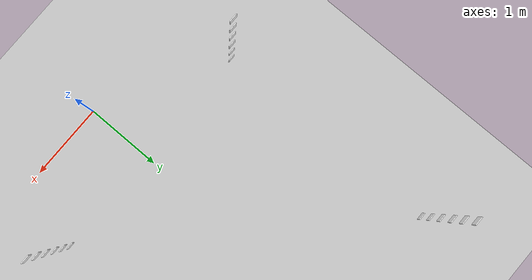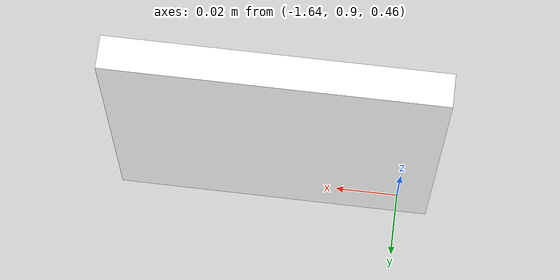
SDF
<sdf version="1.6">
 <world name="default">
  <include><uri>model://ground_plane</uri></include>
  <include><uri>model://sun</uri></include>
  <model name="stag_r1c1_l1_m1">
   <static>true</static>
   <pose>-1.6 0.9 0.146 1.5708 0 0</pose>
   <link name="marker_link">
    <collision name="collision"><geometry><box><size>0.1 0.1 0.01</size></box></geometry></collision>
    <visual name="visual">
     <geometry><box><size>0.1 0.1 0.01</size></box></geometry>
     <material>
      <script>
       <uri>model://STag_marker/materials/scripts</uri>
       <uri>model://STag_marker/materials/textures</uri>
       <name>STagMarker/marker_00219</name>
      </script>
      <ambient>1 1 1 1</ambient>
      <diffuse>1 1 1 1</diffuse>
     </material>
     <pose>0 0 0.001 0 0 0</pose>
    </visual>
   </link>
  </model>
  <model name="stag_r1c1_l2_m1">
   <static>true</static>
   <pose>-1.6 0.9 0.506 1.5708 0 0</pose>
   <link name="marker_link">
    <collision name="collision"><geometry><box><size>0.1 0.1 0.01</size></box></geometry></collision>
    <visual name="visual">
     <geometry><box><size>0.1 0.1 0.01</size></box></geometry>
     <material>
      <script>
       <uri>model://STag_marker/materials/scripts</uri>
       <uri>model://STag_marker/materials/textures</uri>
       <name>STagMarker/marker_00261</name>
      </script>
      <ambient>1 1 1 1</ambient>
      <diffuse>1 1 1 1</diffuse>
     </material>
     <pose>0 0 0.001 0 0 0</pose>
    </visual>
   </link>
  </model>
  <model name="stag_r1c1_l3_m1">
   <static>true</static>
   <pose>-1.6 0.9 0.867 1.5708 0 0</pose>
   <link name="marker_link">
    <collision name="collision"><geometry><box><size>0.1 0.1 0.01</size></box></geometry></collision>
    <visual name="visual">
     <geometry><box><size>0.1 0.1 0.01</size></box></geometry>
     <material>
      <script>
       <uri>model://STag_marker/materials/scripts</uri>
       <uri>model://STag_marker/materials/textures</uri>
       <name>STagMarker/marker_00426</name>
      </script>
      <ambient>1 1 1 1</ambient>
      <diffuse>1 1 1 1</diffuse>
     </material>
     <pose>0 0 0.001 0 0 0</pose>
    </visual>
   </link>
  </model>
  <model name="stag_r1c1_l4_m1">
   <static>true</static>
   <pose>-1.6 0.9 1.227 1.5708 0 0</pose>
   <link name="marker_link">
    <collision name="collision"><geometry><box><size>0.1 0.1 0.01</size></box></geometry></collision>
    <visual name="visual">
     <geometry><box><size>0.1 0.1 0.01</size></box></geometry>
     <material>
      <script>
       <uri>model://STag_marker/materials/scripts</uri>
       <uri>model://STag_marker/materials/textures</uri>
       <name>STagMarker/marker_00519</name>
      </script>
      <ambient>1 1 1 1</ambient>
      <diffuse>1 1 1 1</diffuse>
     </material>
     <pose>0 0 0.001 0 0 0</pose>
    </visual>
   </link>
  </model>
  <model name="stag_r1c1_l5_m1">
   <static>true</static>
   <pose>-1.6 0.9 1.556 1.5708 0 0</pose>
   <link name="marker_link">
    <collision name="collision"><geometry><box><size>0.1 0.1 0.01</size></box></geometry></collision>
    <visual name="visual">
     <geometry><box><size>0.1 0.1 0.01</size></box></geometry>
     <material>
      <script>
       <uri>model://STag_marker/materials/scripts</uri>
       <uri>model://STag_marker/materials/textures</uri>
       <name>STagMarker/marker_00525</name>
      </script>
      <ambient>1 1 1 1</ambient>
      <diffuse>1 1 1 1</diffuse>
     </material>
     <pose>0 0 0.001 0 0 0</pose>
    </visual>
   </link>
  </model>
  <model name="stag_r1c1_l6_m1">
   <static>true</static>
   <pose>-1.6 0.9 1.886 1.5708 0 0</pose>
   <link name="marker_link">
    <collision name="collision"><geometry><box><size>0.1 0.1 0.01</size></box></geometry></collision>
    <visual name="visual">
     <geometry><box><size>0.1 0.1 0.01</size></box></geometry>
     <material>
      <script>
       <uri>model://STag_marker/materials/scripts</uri>
       <uri>model://STag_marker/materials/textures</uri>
       <name>STagMarker/marker_00526</name>
      </script>
      <ambient>1 1 1 1</ambient>
      <diffuse>1 1 1 1</diffuse>
     </material>
     <pose>0 0 0.001 0 0 0</pose>
    </visual>
   </link>
  </model>
  <model name="stag_r1c2_l1_m1">
   <static>true</static>
   <pose>1.4 0.9 0.146 1.5708 0 0</pose>
   <link name="marker_link">
    <collision name="collision"><geometry><box><size>0.1 0.1 0.01</size></box></geometry></collision>
    <visual name="visual">
     <geometry><box><size>0.1 0.1 0.01</size></box></geometry>
     <material>
      <script>
       <uri>model://STag_marker/materials/scripts</uri>
       <uri>model://STag_marker/materials/textures</uri>
       <name>STagMarker/marker_00537</name>
      </script>
      <ambient>1 1 1 1</ambient>
      <diffuse>1 1 1 1</diffuse>
     </material>
     <pose>0 0 0.001 0 0 0</pose>
    </visual>
   </link>
  </model>
  <model name="stag_r1c2_l2_m1">
   <static>true</static>
   <pose>1.4 0.9 0.506 1.5708 0 0</pose>
   <link name="marker_link">
    <collision name="collision"><geometry><box><size>0.1 0.1 0.01</size></box></geometry></collision>
    <visual name="visual">
     <geometry><box><size>0.1 0.1 0.01</size></box></geometry>
     <material>
      <script>
       <uri>model://STag_marker/materials/scripts</uri>
       <uri>model://STag_marker/materials/textures</uri>
       <name>STagMarker/marker_00563</name>
      </script>
      <ambient>1 1 1 1</ambient>
      <diffuse>1 1 1 1</diffuse>
     </material>
     <pose>0 0 0.001 0 0 0</pose>
    </visual>
   </link>
  </model>
  <model name="stag_r1c2_l3_m1">
   <static>true</static>
   <pose>1.4 0.9 0.867 1.5708 0 0</pose>
   <link name="marker_link">
    <collision name="collision"><geometry><box><size>0.1 0.1 0.01</size></box></geometry></collision>
    <visual name="visual">
     <geometry><box><size>0.1 0.1 0.01</size></box></geometry>
     <material>
      <script>
       <uri>model://STag_marker/materials/scripts</uri>
       <uri>model://STag_marker/materials/textures</uri>
       <name>STagMarker/marker_00578</name>
      </script>
      <ambient>1 1 1 1</ambient>
      <diffuse>1 1 1 1</diffuse>
     </material>
     <pose>0 0 0.001 0 0 0</pose>
    </visual>
   </link>
  </model>
  <model name="stag_r1c2_l4_m1">
   <static>true</static>
   <pose>1.4 0.9 1.227 1.5708 0 0</pose>
   <link name="marker_link">
    <collision name="collision"><geometry><box><size>0.1 0.1 0.01</size></box></geometry></collision>
    <visual name="visual">
     <geometry><box><size>0.1 0.1 0.01</size></box></geometry>
     <material>
      <script>
       <uri>model://STag_marker/materials/scripts</uri>
       <uri>model://STag_marker/materials/textures</uri>
       <name>STagMarker/marker_00679</name>
      </script>
      <ambient>1 1 1 1</ambient>
      <diffuse>1 1 1 1</diffuse>
     </material>
     <pose>0 0 0.001 0 0 0</pose>
    </visual>
   </link>
  </model>
  <model name="stag_r1c2_l5_m1">
   <static>true</static>
   <pose>1.4 0.9 1.556 1.5708 0 0</pose>
   <link name="marker_link">
    <collision name="collision"><geometry><box><size>0.1 0.1 0.01</size></box></geometry></collision>
    <visual name="visual">
     <geometry><box><size>0.1 0.1 0.01</size></box></geometry>
     <material>
      <script>
       <uri>model://STag_marker/materials/scripts</uri>
       <uri>model://STag_marker/materials/textures</uri>
       <name>STagMarker/marker_00800</name>
      </script>
      <ambient>1 1 1 1</ambient>
      <diffuse>1 1 1 1</diffuse>
     </material>
     <pose>0 0 0.001 0 0 0</pose>
    </visual>
   </link>
  </model>
  <model name="stag_r1c2_l6_m1">
   <static>true</static>
   <pose>1.4 0.9 1.886 1.5708 0 0</pose>
   <link name="marker_link">
    <collision name="collision"><geometry><box><size>0.1 0.1 0.01</size></box></geometry></collision>
    <visual name="visual">
     <geometry><box><size>0.1 0.1 0.01</size></box></geometry>
     <material>
      <script>
       <uri>model://STag_marker/materials/scripts</uri>
       <uri>model://STag_marker/materials/textures</uri>
       <name>STagMarker/marker_00848</name>
      </script>
      <ambient>1 1 1 1</ambient>
      <diffuse>1 1 1 1</diffuse>
     </material>
     <pose>0 0 0.001 0 0 0</pose>
    </visual>
   </link>
  </model>
  <model name="stag_r2c1_l1_m1">
   <static>true</static>
   <pose>-1.6 3.9 0.146 1.5708 0 0</pose>
   <link name="marker_link">
    <collision name="collision"><geometry><box><size>0.1 0.1 0.01</size></box></geometry></collision>
    <visual name="visual">
     <geometry><box><size>0.1 0.1 0.01</size></box></geometry>
     <material>
      <script>
       <uri>model://STag_marker/materials/scripts</uri>
       <uri>model://STag_marker/materials/textures</uri>
       <name>STagMarker/marker_01138</name>
      </script>
      <ambient>1 1 1 1</ambient>
      <diffuse>1 1 1 1</diffuse>
     </material>
     <pose>0 0 0.001 0 0 0</pose>
    </visual>
   </link>
  </model>
  <model name="stag_r2c1_l2_m1">
   <static>true</static>
   <pose>-1.6 3.9 0.506 1.5708 0 0</pose>
   <link name="marker_link">
    <collision name="collision"><geometry><box><size>0.1 0.1 0.01</size></box></geometry></collision>
    <visual name="visual">
     <geometry><box><size>0.1 0.1 0.01</size></box></geometry>
     <material>
      <script>
       <uri>model://STag_marker/materials/scripts</uri>
       <uri>model://STag_marker/materials/textures</uri>
       <name>STagMarker/marker_01181</name>
      </script>
      <ambient>1 1 1 1</ambient>
      <diffuse>1 1 1 1</diffuse>
     </material>
     <pose>0 0 0.001 0 0 0</pose>
    </visual>
   </link>
  </model>
  <model name="stag_r2c1_l3_m1">
   <static>true</static>
   <pose>-1.6 3.9 0.867 1.5708 0 0</pose>
   <link name="marker_link">
    <collision name="collision"><geometry><box><size>0.1 0.1 0.01</size></box></geometry></collision>
    <visual name="visual">
     <geometry><box><size>0.1 0.1 0.01</size></box></geometry>
     <material>
      <script>
       <uri>model://STag_marker/materials/scripts</uri>
       <uri>model://STag_marker/materials/textures</uri>
       <name>STagMarker/marker_01311</name>
      </script>
      <ambient>1 1 1 1</ambient>
      <diffuse>1 1 1 1</diffuse>
     </material>
     <pose>0 0 0.001 0 0 0</pose>
    </visual>
   </link>
  </model>
  <model name="stag_r2c1_l4_m1">
   <static>true</static>
   <pose>-1.6 3.9 1.227 1.5708 0 0</pose>
   <link name="marker_link">
    <collision name="collision"><geometry><box><size>0.1 0.1 0.01</size></box></geometry></collision>
    <visual name="visual">
     <geometry><box><size>0.1 0.1 0.01</size></box></geometry>
     <material>
      <script>
       <uri>model://STag_marker/materials/scripts</uri>
       <uri>model://STag_marker/materials/textures</uri>
       <name>STagMarker/marker_01391</name>
      </script>
      <ambient>1 1 1 1</ambient>
      <diffuse>1 1 1 1</diffuse>
     </material>
     <pose>0 0 0.001 0 0 0</pose>
    </visual>
   </link>
  </model>
  <model name="stag_r2c1_l5_m1">
   <static>true</static>
   <pose>-1.6 3.9 1.556 1.5708 0 0</pose>
   <link name="marker_link">
    <collision name="collision"><geometry><box><size>0.1 0.1 0.01</size></box></geometry></collision>
    <visual name="visual">
     <geometry><box><size>0.1 0.1 0.01</size></box></geometry>
     <material>
      <script>
       <uri>model://STag_marker/materials/scripts</uri>
       <uri>model://STag_marker/materials/textures</uri>
       <name>STagMarker/marker_01396</name>
      </script>
      <ambient>1 1 1 1</ambient>
      <diffuse>1 1 1 1</diffuse>
     </material>
     <pose>0 0 0.001 0 0 0</pose>
    </visual>
   </link>
  </model>
  <model name="stag_r2c1_l6_m1">
   <static>true</static>
   <pose>-1.6 3.9 1.886 1.5708 0 0</pose>
   <link name="marker_link">
    <collision name="collision"><geometry><box><size>0.1 0.1 0.01</size></box></geometry></collision>
    <visual name="visual">
     <geometry><box><size>0.1 0.1 0.01</size></box></geometry>
     <material>
      <script>
       <uri>model://STag_marker/materials/scripts</uri>
       <uri>model://STag_marker/materials/textures</uri>
       <name>STagMarker/marker_01451</name>
      </script>
      <ambient>1 1 1 1</ambient>
      <diffuse>1 1 1 1</diffuse>
     </material>
     <pose>0 0 0.001 0 0 0</pose>
    </visual>
   </link>
  </model>
 </world>
</sdf>
